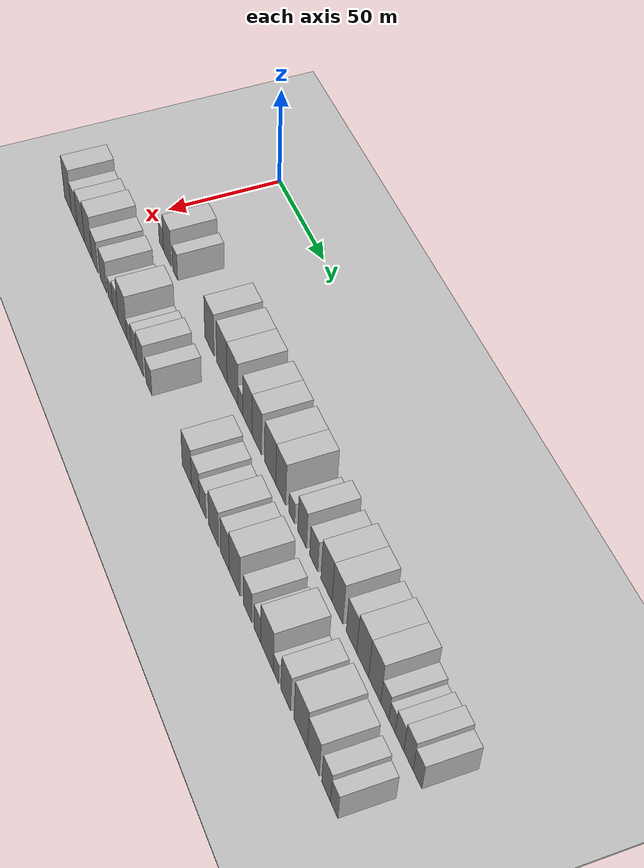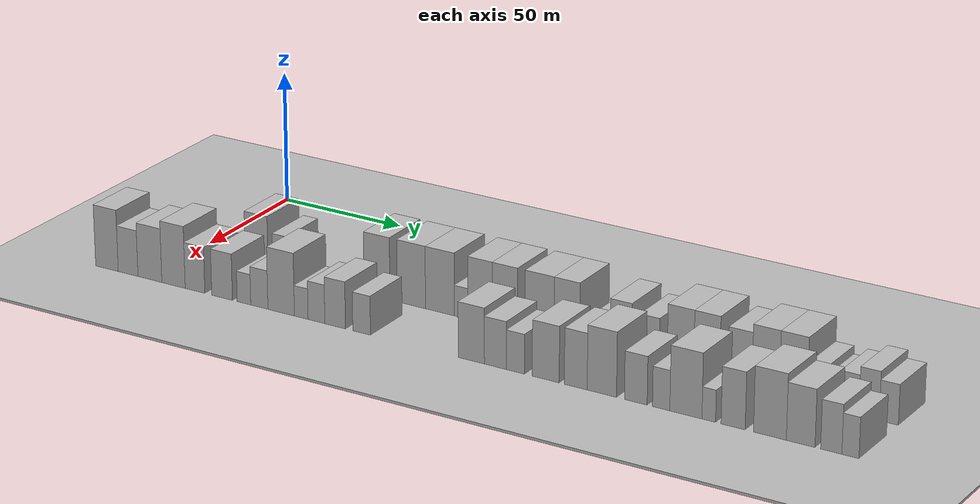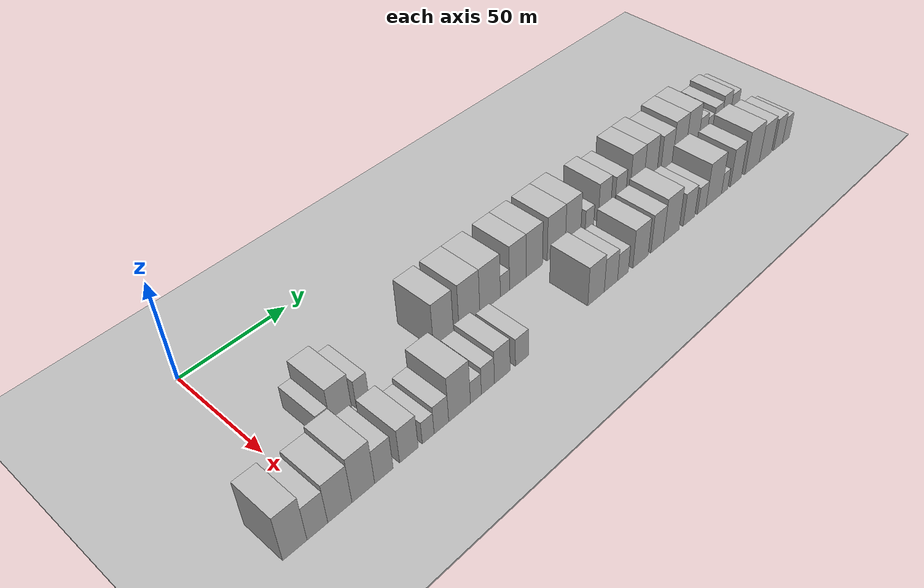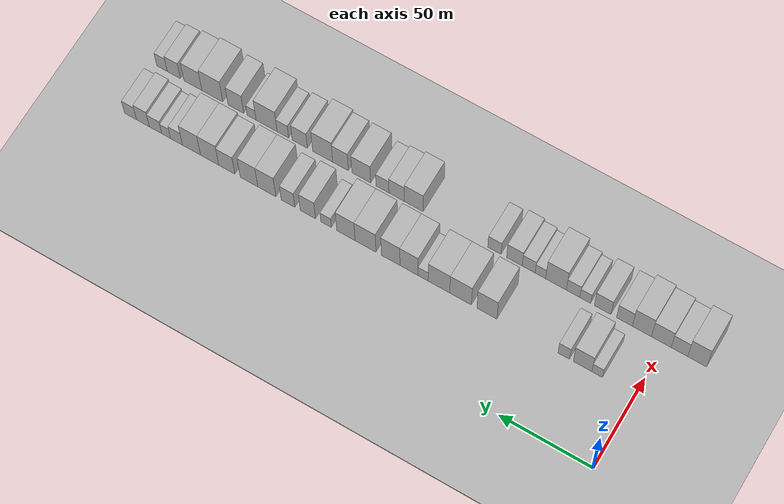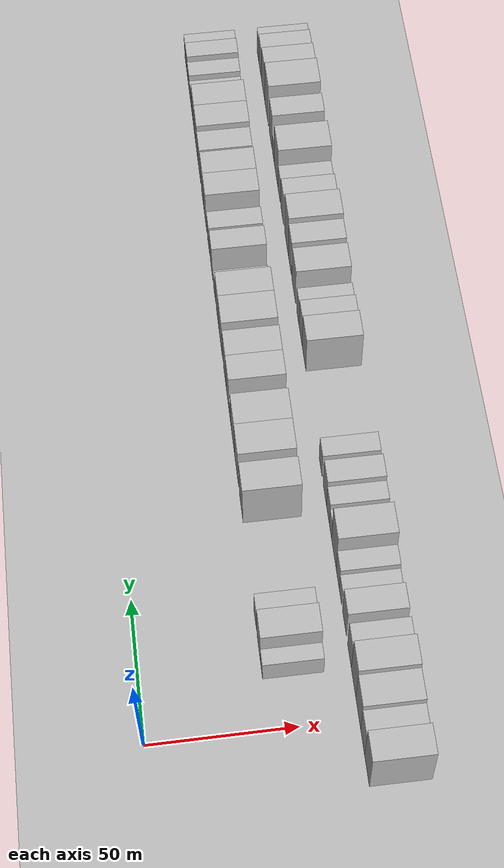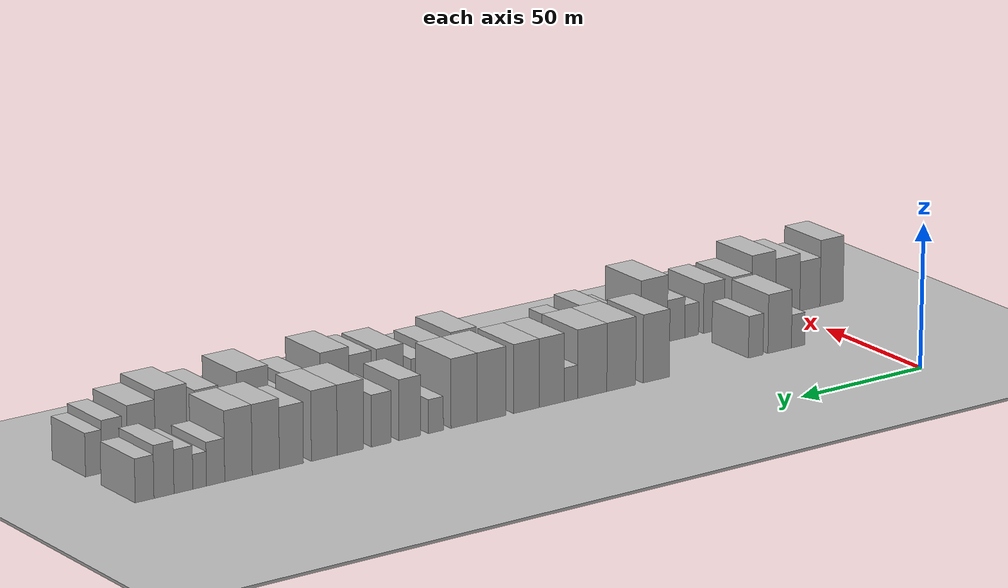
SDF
<sdf version="1.6">
 <world name="default">
  <include><name>ground_plane_1</name><uri>model://HANNAS_ground_plane</uri></include>
  <include>
   <name>ground_plane_2</name>
   <uri>model://HANNAS_ground_plane</uri>
   <pose>100 0 0  0 0 0</pose>
  </include>
  <model name="building_23">
   <static>1</static>
   <pose>50.0000 20.0365 0 0.000000 0.000000 0.000000</pose>
   <link name="link">
    <pose>0 0 6.00 0 0 0</pose>
    <collision name="collision"><geometry><box><size>20.0000 5.6139 12.0000</size></box></geometry></collision>
    <visual name="visual">
     <cast_shadows>0</cast_shadows>
     <geometry><box><size>20.0000 5.6139 12.0000</size></box></geometry>
     <material>
      <script>
       <uri>model://HANNAS_wall/materials/scripts</uri>
       <uri>model://HANNAS_wall/materials/textures</uri>
       <name>vrc/HANNAS_wall</name>
      </script>
     </material>
    </visual>
   </link>
  </model>
  <model name="building_24">
   <static>1</static>
   <pose>50.0000 27.7827 0 0.000000 0.000000 0.000000</pose>
   <link name="link">
    <pose>0 0 10.50 0 0 0</pose>
    <collision name="collision"><geometry><box><size>20.0000 9.8785 21.0000</size></box></geometry></collision>
    <visual name="visual">
     <cast_shadows>0</cast_shadows>
     <geometry><box><size>20.0000 9.8785 21.0000</size></box></geometry>
     <material>
      <script>
       <uri>model://HANNAS_wall/materials/scripts</uri>
       <uri>model://HANNAS_wall/materials/textures</uri>
       <name>vrc/HANNAS_wall</name>
      </script>
     </material>
    </visual>
   </link>
  </model>
  <model name="building_25">
   <static>1</static>
   <pose>50.0000 37.7864 0 0.000000 0.000000 0.000000</pose>
   <link name="link">
    <pose>0 0 7.50 0 0 0</pose>
    <collision name="collision"><geometry><box><size>20.0000 6.1289 15.0000</size></box></geometry></collision>
    <visual name="visual">
     <cast_shadows>0</cast_shadows>
     <geometry><box><size>20.0000 6.1289 15.0000</size></box></geometry>
     <material>
      <script>
       <uri>model://HANNAS_wall/materials/scripts</uri>
       <uri>model://HANNAS_wall/materials/textures</uri>
       <name>vrc/HANNAS_wall</name>
      </script>
     </material>
    </visual>
   </link>
  </model>
  <model name="building_26">
   <static>1</static>
   <pose>50.0000 79.0097 0 0.000000 0.000000 0.000000</pose>
   <link name="link">
    <pose>0 0 12.00 0 0 0</pose>
    <collision name="collision"><geometry><box><size>20.0000 10.7726 24.0000</size></box></geometry></collision>
    <visual name="visual">
     <cast_shadows>0</cast_shadows>
     <geometry><box><size>20.0000 10.7726 24.0000</size></box></geometry>
     <material>
      <script>
       <uri>model://HANNAS_wall/materials/scripts</uri>
       <uri>model://HANNAS_wall/materials/textures</uri>
       <name>vrc/HANNAS_wall</name>
      </script>
     </material>
    </visual>
   </link>
  </model>
  <model name="building_27">
   <static>1</static>
   <pose>50.0000 93.2455 0 0.000000 0.000000 0.000000</pose>
   <link name="link">
    <pose>0 0 12.00 0 0 0</pose>
    <collision name="collision"><geometry><box><size>20.0000 11.6992 24.0000</size></box></geometry></collision>
    <visual name="visual">
     <cast_shadows>0</cast_shadows>
     <geometry><box><size>20.0000 11.6992 24.0000</size></box></geometry>
     <material>
      <script>
       <uri>model://HANNAS_wall/materials/scripts</uri>
       <uri>model://HANNAS_wall/materials/textures</uri>
       <name>vrc/HANNAS_wall</name>
      </script>
     </material>
    </visual>
   </link>
  </model>
  <model name="building_28">
   <static>1</static>
   <pose>50.0000 105.0080 0 0.000000 0.000000 0.000000</pose>
   <link name="link">
    <pose>0 0 12.00 0 0 0</pose>
    <collision name="collision"><geometry><box><size>20.0000 11.8258 24.0000</size></box></geometry></collision>
    <visual name="visual">
     <cast_shadows>0</cast_shadows>
     <geometry><box><size>20.0000 11.8258 24.0000</size></box></geometry>
     <material>
      <script>
       <uri>model://HANNAS_wall/materials/scripts</uri>
       <uri>model://HANNAS_wall/materials/textures</uri>
       <name>vrc/HANNAS_wall</name>
      </script>
     </material>
    </visual>
   </link>
  </model>
  <model name="building_29">
   <static>1</static>
   <pose>50.0000 113.6295 0 0.000000 0.000000 0.000000</pose>
   <link name="link">
    <pose>0 0 6.00 0 0 0</pose>
    <collision name="collision"><geometry><box><size>20.0000 5.4173 12.0000</size></box></geometry></collision>
    <visual name="visual">
     <cast_shadows>0</cast_shadows>
     <geometry><box><size>20.0000 5.4173 12.0000</size></box></geometry>
     <material>
      <script>
       <uri>model://HANNAS_wall/materials/scripts</uri>
       <uri>model://HANNAS_wall/materials/textures</uri>
       <name>vrc/HANNAS_wall</name>
      </script>
     </material>
    </visual>
   </link>
  </model>
  <model name="building_30">
   <static>1</static>
   <pose>50.0000 121.3098 0 0.000000 0.000000 0.000000</pose>
   <link name="link">
    <pose>0 0 12.00 0 0 0</pose>
    <collision name="collision"><geometry><box><size>20.0000 9.9432 24.0000</size></box></geometry></collision>
    <visual name="visual">
     <cast_shadows>0</cast_shadows>
     <geometry><box><size>20.0000 9.9432 24.0000</size></box></geometry>
     <material>
      <script>
       <uri>model://HANNAS_wall/materials/scripts</uri>
       <uri>model://HANNAS_wall/materials/textures</uri>
       <name>vrc/HANNAS_wall</name>
      </script>
     </material>
    </visual>
   </link>
  </model>
  <model name="building_31">
   <static>1</static>
   <pose>50.0000 131.3700 0 0.000000 0.000000 0.000000</pose>
   <link name="link">
    <pose>0 0 12.00 0 0 0</pose>
    <collision name="collision"><geometry><box><size>20.0000 10.1771 24.0000</size></box></geometry></collision>
    <visual name="visual">
     <cast_shadows>0</cast_shadows>
     <geometry><box><size>20.0000 10.1771 24.0000</size></box></geometry>
     <material>
      <script>
       <uri>model://HANNAS_wall/materials/scripts</uri>
       <uri>model://HANNAS_wall/materials/textures</uri>
       <name>vrc/HANNAS_wall</name>
      </script>
     </material>
    </visual>
   </link>
  </model>
  <model name="building_32">
   <static>1</static>
   <pose>50.0000 145.2231 0 0.000000 0.000000 0.000000</pose>
   <link name="link">
    <pose>0 0 12.00 0 0 0</pose>
    <collision name="collision"><geometry><box><size>20.0000 11.5292 24.0000</size></box></geometry></collision>
    <visual name="visual">
     <cast_shadows>0</cast_shadows>
     <geometry><box><size>20.0000 11.5292 24.0000</size></box></geometry>
     <material>
      <script>
       <uri>model://HANNAS_wall/materials/scripts</uri>
       <uri>model://HANNAS_wall/materials/textures</uri>
       <name>vrc/HANNAS_wall</name>
      </script>
     </material>
    </visual>
   </link>
  </model>
  <model name="building_33">
   <static>1</static>
   <pose>50.0000 156.0514 0 0.000000 0.000000 0.000000</pose>
   <link name="link">
    <pose>0 0 12.00 0 0 0</pose>
    <collision name="collision"><geometry><box><size>20.0000 10.1275 24.0000</size></box></geometry></collision>
    <visual name="visual">
     <cast_shadows>0</cast_shadows>
     <geometry><box><size>20.0000 10.1275 24.0000</size></box></geometry>
     <material>
      <script>
       <uri>model://HANNAS_wall/materials/scripts</uri>
       <uri>model://HANNAS_wall/materials/textures</uri>
       <name>vrc/HANNAS_wall</name>
      </script>
     </material>
    </visual>
   </link>
  </model>
  <model name="building_34">
   <static>1</static>
   <pose>50.0000 167.0105 0 0.000000 0.000000 0.000000</pose>
   <link name="link">
    <pose>0 0 6.00 0 0 0</pose>
    <collision name="collision"><geometry><box><size>20.0000 5.7908 12.0000</size></box></geometry></collision>
    <visual name="visual">
     <cast_shadows>0</cast_shadows>
     <geometry><box><size>20.0000 5.7908 12.0000</size></box></geometry>
     <material>
      <script>
       <uri>model://HANNAS_wall/materials/scripts</uri>
       <uri>model://HANNAS_wall/materials/textures</uri>
       <name>vrc/HANNAS_wall</name>
      </script>
     </material>
    </visual>
   </link>
  </model>
  <model name="building_35">
   <static>1</static>
   <pose>50.0000 177.1326 0 0.000000 0.000000 0.000000</pose>
   <link name="link">
    <pose>0 0 10.50 0 0 0</pose>
    <collision name="collision"><geometry><box><size>20.0000 8.4533 21.0000</size></box></geometry></collision>
    <visual name="visual">
     <cast_shadows>0</cast_shadows>
     <geometry><box><size>20.0000 8.4533 21.0000</size></box></geometry>
     <material>
      <script>
       <uri>model://HANNAS_wall/materials/scripts</uri>
       <uri>model://HANNAS_wall/materials/textures</uri>
       <name>vrc/HANNAS_wall</name>
      </script>
     </material>
    </visual>
   </link>
  </model>
  <model name="building_36">
   <static>1</static>
   <pose>50.0000 188.1758 0 0.000000 0.000000 0.000000</pose>
   <link name="link">
    <pose>0 0 9.00 0 0 0</pose>
    <collision name="collision"><geometry><box><size>20.0000 7.6330 18.0000</size></box></geometry></collision>
    <visual name="visual">
     <cast_shadows>0</cast_shadows>
     <geometry><box><size>20.0000 7.6330 18.0000</size></box></geometry>
     <material>
      <script>
       <uri>model://HANNAS_wall/materials/scripts</uri>
       <uri>model://HANNAS_wall/materials/textures</uri>
       <name>vrc/HANNAS_wall</name>
      </script>
     </material>
    </visual>
   </link>
  </model>
  <model name="building_37">
   <static>1</static>
   <pose>50.0000 200.0619 0 0.000000 0.000000 0.000000</pose>
   <link name="link">
    <pose>0 0 12.00 0 0 0</pose>
    <collision name="collision"><geometry><box><size>20.0000 10.1394 24.0000</size></box></geometry></collision>
    <visual name="visual">
     <cast_shadows>0</cast_shadows>
     <geometry><box><size>20.0000 10.1394 24.0000</size></box></geometry>
     <material>
      <script>
       <uri>model://HANNAS_wall/materials/scripts</uri>
       <uri>model://HANNAS_wall/materials/textures</uri>
       <name>vrc/HANNAS_wall</name>
      </script>
     </material>
    </visual>
   </link>
  </model>
  <model name="building_38">
   <static>1</static>
   <pose>50.0000 210.0537 0 0.000000 0.000000 0.000000</pose>
   <link name="link">
    <pose>0 0 12.00 0 0 0</pose>
    <collision name="collision"><geometry><box><size>20.0000 9.8441 24.0000</size></box></geometry></collision>
    <visual name="visual">
     <cast_shadows>0</cast_shadows>
     <geometry><box><size>20.0000 9.8441 24.0000</size></box></geometry>
     <material>
      <script>
       <uri>model://HANNAS_wall/materials/scripts</uri>
       <uri>model://HANNAS_wall/materials/textures</uri>
       <name>vrc/HANNAS_wall</name>
      </script>
     </material>
    </visual>
   </link>
  </model>
  <model name="building_39">
   <static>1</static>
   <pose>50.0000 222.5201 0 0.000000 0.000000 0.000000</pose>
   <link name="link">
    <pose>0 0 10.50 0 0 0</pose>
    <collision name="collision"><geometry><box><size>20.0000 9.0887 21.0000</size></box></geometry></collision>
    <visual name="visual">
     <cast_shadows>0</cast_shadows>
     <geometry><box><size>20.0000 9.0887 21.0000</size></box></geometry>
     <material>
      <script>
       <uri>model://HANNAS_wall/materials/scripts</uri>
       <uri>model://HANNAS_wall/materials/textures</uri>
       <name>vrc/HANNAS_wall</name>
      </script>
     </material>
    </visual>
   </link>
  </model>
  <model name="building_40">
   <static>1</static>
   <pose>50.0000 232.1938 0 0.000000 0.000000 0.000000</pose>
   <link name="link">
    <pose>0 0 12.00 0 0 0</pose>
    <collision name="collision"><geometry><box><size>20.0000 10.2586 24.0000</size></box></geometry></collision>
    <visual name="visual">
     <cast_shadows>0</cast_shadows>
     <geometry><box><size>20.0000 10.2586 24.0000</size></box></geometry>
     <material>
      <script>
       <uri>model://HANNAS_wall/materials/scripts</uri>
       <uri>model://HANNAS_wall/materials/textures</uri>
       <name>vrc/HANNAS_wall</name>
      </script>
     </material>
    </visual>
   </link>
  </model>
  <model name="building_41">
   <static>1</static>
   <pose>50.0000 242.4522 0 0.000000 0.000000 0.000000</pose>
   <link name="link">
    <pose>0 0 12.00 0 0 0</pose>
    <collision name="collision"><geometry><box><size>20.0000 10.2583 24.0000</size></box></geometry></collision>
    <visual name="visual">
     <cast_shadows>0</cast_shadows>
     <geometry><box><size>20.0000 10.2583 24.0000</size></box></geometry>
     <material>
      <script>
       <uri>model://HANNAS_wall/materials/scripts</uri>
       <uri>model://HANNAS_wall/materials/textures</uri>
       <name>vrc/HANNAS_wall</name>
      </script>
     </material>
    </visual>
   </link>
  </model>
  <model name="building_42">
   <static>1</static>
   <pose>50.0000 250.9797 0 0.000000 0.000000 0.000000</pose>
   <link name="link">
    <pose>0 0 7.50 0 0 0</pose>
    <collision name="collision"><geometry><box><size>20.0000 6.7966 15.0000</size></box></geometry></collision>
    <visual name="visual">
     <cast_shadows>0</cast_shadows>
     <geometry><box><size>20.0000 6.7966 15.0000</size></box></geometry>
     <material>
      <script>
       <uri>model://HANNAS_wall/materials/scripts</uri>
       <uri>model://HANNAS_wall/materials/textures</uri>
       <name>vrc/HANNAS_wall</name>
      </script>
     </material>
    </visual>
   </link>
  </model>
  <model name="building_43">
   <static>1</static>
   <pose>50.0000 256.8951 0 0.000000 0.000000 0.000000</pose>
   <link name="link">
    <pose>0 0 6.00 0 0 0</pose>
    <collision name="collision"><geometry><box><size>20.0000 5.0343 12.0000</size></box></geometry></collision>
    <visual name="visual">
     <cast_shadows>0</cast_shadows>
     <geometry><box><size>20.0000 5.0343 12.0000</size></box></geometry>
     <material>
      <script>
       <uri>model://HANNAS_wall/materials/scripts</uri>
       <uri>model://HANNAS_wall/materials/textures</uri>
       <name>vrc/HANNAS_wall</name>
      </script>
     </material>
    </visual>
   </link>
  </model>
  <model name="building_44">
   <static>1</static>
   <pose>50.0000 262.9152 0 0.000000 0.000000 0.000000</pose>
   <link name="link">
    <pose>0 0 7.50 0 0 0</pose>
    <collision name="collision"><geometry><box><size>20.0000 7.0057 15.0000</size></box></geometry></collision>
    <visual name="visual">
     <cast_shadows>0</cast_shadows>
     <geometry><box><size>20.0000 7.0057 15.0000</size></box></geometry>
     <material>
      <script>
       <uri>model://HANNAS_wall/materials/scripts</uri>
       <uri>model://HANNAS_wall/materials/textures</uri>
       <name>vrc/HANNAS_wall</name>
      </script>
     </material>
    </visual>
   </link>
  </model>
  <model name="building_45">
   <static>1</static>
   <pose>50.0000 270.1034 0 0.000000 0.000000 0.000000</pose>
   <link name="link">
    <pose>0 0 9.00 0 0 0</pose>
    <collision name="collision"><geometry><box><size>20.0000 7.3708 18.0000</size></box></geometry></collision>
    <visual name="visual">
     <cast_shadows>0</cast_shadows>
     <geometry><box><size>20.0000 7.3708 18.0000</size></box></geometry>
     <material>
      <script>
       <uri>model://HANNAS_wall/materials/scripts</uri>
       <uri>model://HANNAS_wall/materials/textures</uri>
       <name>vrc/HANNAS_wall</name>
      </script>
     </material>
    </visual>
   </link>
  </model>
  <model name="building_46">
   <static>1</static>
   <pose>50.0000 277.2340 0 0.000000 0.000000 0.000000</pose>
   <link name="link">
    <pose>0 0 7.50 0 0 0</pose>
    <collision name="collision"><geometry><box><size>20.0000 6.8904 15.0000</size></box></geometry></collision>
    <visual name="visual">
     <cast_shadows>0</cast_shadows>
     <geometry><box><size>20.0000 6.8904 15.0000</size></box></geometry>
     <material>
      <script>
       <uri>model://HANNAS_wall/materials/scripts</uri>
       <uri>model://HANNAS_wall/materials/textures</uri>
       <name>vrc/HANNAS_wall</name>
      </script>
     </material>
    </visual>
   </link>
  </model>
  <model name="building_77">
   <static>1</static>
   <pose>79.0000 -17.0609 0 0.000000 0.000000 0.000000</pose>
   <link name="link">
    <pose>0 0 12.00 0 0 0</pose>
    <collision name="collision"><geometry><box><size>20.0000 10.0025 24.0000</size></box></geometry></collision>
    <visual name="visual">
     <cast_shadows>0</cast_shadows>
     <geometry><box><size>20.0000 10.0025 24.0000</size></box></geometry>
     <material>
      <script>
       <uri>model://HANNAS_wall/materials/scripts</uri>
       <uri>model://HANNAS_wall/materials/textures</uri>
       <name>vrc/HANNAS_wall</name>
      </script>
     </material>
    </visual>
   </link>
  </model>
  <model name="building_78">
   <static>1</static>
   <pose>79.0000 -7.7088 0 0.000000 0.000000 0.000000</pose>
   <link name="link">
    <pose>0 0 9.00 0 0 0</pose>
    <collision name="collision"><geometry><box><size>20.0000 8.7016 18.0000</size></box></geometry></collision>
    <visual name="visual">
     <cast_shadows>0</cast_shadows>
     <geometry><box><size>20.0000 8.7016 18.0000</size></box></geometry>
     <material>
      <script>
       <uri>model://HANNAS_wall/materials/scripts</uri>
       <uri>model://HANNAS_wall/materials/textures</uri>
       <name>vrc/HANNAS_wall</name>
      </script>
     </material>
    </visual>
   </link>
  </model>
  <model name="building_79">
   <static>1</static>
   <pose>79.0000 1.8762 0 0.000000 0.000000 0.000000</pose>
   <link name="link">
    <pose>0 0 10.50 0 0 0</pose>
    <collision name="collision"><geometry><box><size>20.0000 10.4684 21.0000</size></box></geometry></collision>
    <visual name="visual">
     <cast_shadows>0</cast_shadows>
     <geometry><box><size>20.0000 10.4684 21.0000</size></box></geometry>
     <material>
      <script>
       <uri>model://HANNAS_wall/materials/scripts</uri>
       <uri>model://HANNAS_wall/materials/textures</uri>
       <name>vrc/HANNAS_wall</name>
      </script>
     </material>
    </visual>
   </link>
  </model>
  <model name="building_80">
   <static>1</static>
   <pose>79.0000 12.1811 0 0.000000 0.000000 0.000000</pose>
   <link name="link">
    <pose>0 0 12.00 0 0 0</pose>
    <collision name="collision"><geometry><box><size>20.0000 10.1414 24.0000</size></box></geometry></collision>
    <visual name="visual">
     <cast_shadows>0</cast_shadows>
     <geometry><box><size>20.0000 10.1414 24.0000</size></box></geometry>
     <material>
      <script>
       <uri>model://HANNAS_wall/materials/scripts</uri>
       <uri>model://HANNAS_wall/materials/textures</uri>
       <name>vrc/HANNAS_wall</name>
      </script>
     </material>
    </visual>
   </link>
  </model>
  <model name="building_81">
   <static>1</static>
   <pose>79.0000 21.4870 0 0.000000 0.000000 0.000000</pose>
   <link name="link">
    <pose>0 0 9.00 0 0 0</pose>
    <collision name="collision"><geometry><box><size>20.0000 8.4704 18.0000</size></box></geometry></collision>
    <visual name="visual">
     <cast_shadows>0</cast_shadows>
     <geometry><box><size>20.0000 8.4704 18.0000</size></box></geometry>
     <material>
      <script>
       <uri>model://HANNAS_wall/materials/scripts</uri>
       <uri>model://HANNAS_wall/materials/textures</uri>
       <name>vrc/HANNAS_wall</name>
      </script>
     </material>
    </visual>
   </link>
  </model>
  <model name="building_82">
   <static>1</static>
   <pose>79.0000 33.1528 0 0.000000 0.000000 0.000000</pose>
   <link name="link">
    <pose>0 0 9.00 0 0 0</pose>
    <collision name="collision"><geometry><box><size>20.0000 8.8611 18.0000</size></box></geometry></collision>
    <visual name="visual">
     <cast_shadows>0</cast_shadows>
     <geometry><box><size>20.0000 8.8611 18.0000</size></box></geometry>
     <material>
      <script>
       <uri>model://HANNAS_wall/materials/scripts</uri>
       <uri>model://HANNAS_wall/materials/textures</uri>
       <name>vrc/HANNAS_wall</name>
      </script>
     </material>
    </visual>
   </link>
  </model>
  <model name="building_83">
   <static>1</static>
   <pose>79.0000 42.4728 0 0.000000 0.000000 0.000000</pose>
   <link name="link">
    <pose>0 0 6.00 0 0 0</pose>
    <collision name="collision"><geometry><box><size>20.0000 5.7789 12.0000</size></box></geometry></collision>
    <visual name="visual">
     <cast_shadows>0</cast_shadows>
     <geometry><box><size>20.0000 5.7789 12.0000</size></box></geometry>
     <material>
      <script>
       <uri>model://HANNAS_wall/materials/scripts</uri>
       <uri>model://HANNAS_wall/materials/textures</uri>
       <name>vrc/HANNAS_wall</name>
      </script>
     </material>
    </visual>
   </link>
  </model>
  <model name="building_84">
   <static>1</static>
   <pose>79.0000 48.9953 0 0.000000 0.000000 0.000000</pose>
   <link name="link">
    <pose>0 0 7.50 0 0 0</pose>
    <collision name="collision"><geometry><box><size>20.0000 7.2660 15.0000</size></box></geometry></collision>
    <visual name="visual">
     <cast_shadows>0</cast_shadows>
     <geometry><box><size>20.0000 7.2660 15.0000</size></box></geometry>
     <material>
      <script>
       <uri>model://HANNAS_wall/materials/scripts</uri>
       <uri>model://HANNAS_wall/materials/textures</uri>
       <name>vrc/HANNAS_wall</name>
      </script>
     </material>
    </visual>
   </link>
  </model>
  <model name="building_85">
   <static>1</static>
   <pose>79.0000 58.1985 0 0.000000 0.000000 0.000000</pose>
   <link name="link">
    <pose>0 0 12.00 0 0 0</pose>
    <collision name="collision"><geometry><box><size>20.0000 11.1405 24.0000</size></box></geometry></collision>
    <visual name="visual">
     <cast_shadows>0</cast_shadows>
     <geometry><box><size>20.0000 11.1405 24.0000</size></box></geometry>
     <material>
      <script>
       <uri>model://HANNAS_wall/materials/scripts</uri>
       <uri>model://HANNAS_wall/materials/textures</uri>
       <name>vrc/HANNAS_wall</name>
      </script>
     </material>
    </visual>
   </link>
  </model>
  <model name="building_86">
   <static>1</static>
   <pose>79.0000 66.6175 0 0.000000 0.000000 0.000000</pose>
   <link name="link">
    <pose>0 0 6.00 0 0 0</pose>
    <collision name="collision"><geometry><box><size>20.0000 5.6974 12.0000</size></box></geometry></collision>
    <visual name="visual">
     <cast_shadows>0</cast_shadows>
     <geometry><box><size>20.0000 5.6974 12.0000</size></box></geometry>
     <material>
      <script>
       <uri>model://HANNAS_wall/materials/scripts</uri>
       <uri>model://HANNAS_wall/materials/textures</uri>
       <name>vrc/HANNAS_wall</name>
      </script>
     </material>
    </visual>
   </link>
  </model>
  <model name="building_87">
   <static>1</static>
   <pose>79.0000 72.9470 0 0.000000 0.000000 0.000000</pose>
   <link name="link">
    <pose>0 0 7.50 0 0 0</pose>
    <collision name="collision"><geometry><box><size>20.0000 6.9616 15.0000</size></box></geometry></collision>
    <visual name="visual">
     <cast_shadows>0</cast_shadows>
     <geometry><box><size>20.0000 6.9616 15.0000</size></box></geometry>
     <material>
      <script>
       <uri>model://HANNAS_wall/materials/scripts</uri>
       <uri>model://HANNAS_wall/materials/textures</uri>
       <name>vrc/HANNAS_wall</name>
      </script>
     </material>
    </visual>
   </link>
  </model>
  <model name="building_88">
   <static>1</static>
   <pose>79.0000 80.6842 0 0.000000 0.000000 0.000000</pose>
   <link name="link">
    <pose>0 0 9.00 0 0 0</pose>
    <collision name="collision"><geometry><box><size>20.0000 8.5128 18.0000</size></box></geometry></collision>
    <visual name="visual">
     <cast_shadows>0</cast_shadows>
     <geometry><box><size>20.0000 8.5128 18.0000</size></box></geometry>
     <material>
      <script>
       <uri>model://HANNAS_wall/materials/scripts</uri>
       <uri>model://HANNAS_wall/materials/textures</uri>
       <name>vrc/HANNAS_wall</name>
      </script>
     </material>
    </visual>
   </link>
  </model>
  <model name="building_89">
   <static>1</static>
   <pose>79.0000 91.5619 0 0.000000 0.000000 0.000000</pose>
   <link name="link">
    <pose>0 0 7.50 0 0 0</pose>
    <collision name="collision"><geometry><box><size>20.0000 7.2427 15.0000</size></box></geometry></collision>
    <visual name="visual">
     <cast_shadows>0</cast_shadows>
     <geometry><box><size>20.0000 7.2427 15.0000</size></box></geometry>
     <material>
      <script>
       <uri>model://HANNAS_wall/materials/scripts</uri>
       <uri>model://HANNAS_wall/materials/textures</uri>
       <name>vrc/HANNAS_wall</name>
      </script>
     </material>
    </visual>
   </link>
  </model>
  <model name="building_90">
   <static>1</static>
   <pose>79.0000 135.7607 0 0.000000 0.000000 0.000000</pose>
   <link name="link">
    <pose>0 0 10.50 0 0 0</pose>
    <collision name="collision"><geometry><box><size>20.0000 10.3850 21.0000</size></box></geometry></collision>
    <visual name="visual">
     <cast_shadows>0</cast_shadows>
     <geometry><box><size>20.0000 10.3850 21.0000</size></box></geometry>
     <material>
      <script>
       <uri>model://HANNAS_wall/materials/scripts</uri>
       <uri>model://HANNAS_wall/materials/textures</uri>
       <name>vrc/HANNAS_wall</name>
      </script>
     </material>
    </visual>
   </link>
  </model>
  <model name="building_91">
   <static>1</static>
   <pose>79.0000 145.2522 0 0.000000 0.000000 0.000000</pose>
   <link name="link">
    <pose>0 0 9.00 0 0 0</pose>
    <collision name="collision"><geometry><box><size>20.0000 8.5981 18.0000</size></box></geometry></collision>
    <visual name="visual">
     <cast_shadows>0</cast_shadows>
     <geometry><box><size>20.0000 8.5981 18.0000</size></box></geometry>
     <material>
      <script>
       <uri>model://HANNAS_wall/materials/scripts</uri>
       <uri>model://HANNAS_wall/materials/textures</uri>
       <name>vrc/HANNAS_wall</name>
      </script>
     </material>
    </visual>
   </link>
  </model>
  <model name="building_92">
   <static>1</static>
   <pose>79.0000 153.1192 0 0.000000 0.000000 0.000000</pose>
   <link name="link">
    <pose>0 0 7.50 0 0 0</pose>
    <collision name="collision"><geometry><box><size>20.0000 7.1359 15.0000</size></box></geometry></collision>
    <visual name="visual">
     <cast_shadows>0</cast_shadows>
     <geometry><box><size>20.0000 7.1359 15.0000</size></box></geometry>
     <material>
      <script>
       <uri>model://HANNAS_wall/materials/scripts</uri>
       <uri>model://HANNAS_wall/materials/textures</uri>
       <name>vrc/HANNAS_wall</name>
      </script>
     </material>
    </visual>
   </link>
  </model>
  <model name="building_93">
   <static>1</static>
   <pose>79.0000 164.9041 0 0.000000 0.000000 0.000000</pose>
   <link name="link">
    <pose>0 0 10.50 0 0 0</pose>
    <collision name="collision"><geometry><box><size>20.0000 10.4339 21.0000</size></box></geometry></collision>
    <visual name="visual">
     <cast_shadows>0</cast_shadows>
     <geometry><box><size>20.0000 10.4339 21.0000</size></box></geometry>
     <material>
      <script>
       <uri>model://HANNAS_wall/materials/scripts</uri>
       <uri>model://HANNAS_wall/materials/textures</uri>
       <name>vrc/HANNAS_wall</name>
      </script>
     </material>
    </visual>
   </link>
  </model>
  <model name="building_94">
   <static>1</static>
   <pose>79.0000 176.5016 0 0.000000 0.000000 0.000000</pose>
   <link name="link">
    <pose>0 0 10.50 0 0 0</pose>
    <collision name="collision"><geometry><box><size>20.0000 8.7610 21.0000</size></box></geometry></collision>
    <visual name="visual">
     <cast_shadows>0</cast_shadows>
     <geometry><box><size>20.0000 8.7610 21.0000</size></box></geometry>
     <material>
      <script>
       <uri>model://HANNAS_wall/materials/scripts</uri>
       <uri>model://HANNAS_wall/materials/textures</uri>
       <name>vrc/HANNAS_wall</name>
      </script>
     </material>
    </visual>
   </link>
  </model>
  <model name="building_95">
   <static>1</static>
   <pose>79.0000 186.4643 0 0.000000 0.000000 0.000000</pose>
   <link name="link">
    <pose>0 0 12.00 0 0 0</pose>
    <collision name="collision"><geometry><box><size>20.0000 11.1644 24.0000</size></box></geometry></collision>
    <visual name="visual">
     <cast_shadows>0</cast_shadows>
     <geometry><box><size>20.0000 11.1644 24.0000</size></box></geometry>
     <material>
      <script>
       <uri>model://HANNAS_wall/materials/scripts</uri>
       <uri>model://HANNAS_wall/materials/textures</uri>
       <name>vrc/HANNAS_wall</name>
      </script>
     </material>
    </visual>
   </link>
  </model>
  <model name="building_96">
   <static>1</static>
   <pose>79.0000 199.3229 0 0.000000 0.000000 0.000000</pose>
   <link name="link">
    <pose>0 0 9.00 0 0 0</pose>
    <collision name="collision"><geometry><box><size>20.0000 8.5527 18.0000</size></box></geometry></collision>
    <visual name="visual">
     <cast_shadows>0</cast_shadows>
     <geometry><box><size>20.0000 8.5527 18.0000</size></box></geometry>
     <material>
      <script>
       <uri>model://HANNAS_wall/materials/scripts</uri>
       <uri>model://HANNAS_wall/materials/textures</uri>
       <name>vrc/HANNAS_wall</name>
      </script>
     </material>
    </visual>
   </link>
  </model>
  <model name="building_97">
   <static>1</static>
   <pose>79.0000 208.8476 0 0.000000 0.000000 0.000000</pose>
   <link name="link">
    <pose>0 0 7.50 0 0 0</pose>
    <collision name="collision"><geometry><box><size>20.0000 6.4966 15.0000</size></box></geometry></collision>
    <visual name="visual">
     <cast_shadows>0</cast_shadows>
     <geometry><box><size>20.0000 6.4966 15.0000</size></box></geometry>
     <material>
      <script>
       <uri>model://HANNAS_wall/materials/scripts</uri>
       <uri>model://HANNAS_wall/materials/textures</uri>
       <name>vrc/HANNAS_wall</name>
      </script>
     </material>
    </visual>
   </link>
  </model>
  <model name="building_98">
   <static>1</static>
   <pose>79.0000 218.0600 0 0.000000 0.000000 0.000000</pose>
   <link name="link">
    <pose>0 0 12.00 0 0 0</pose>
    <collision name="collision"><geometry><box><size>20.0000 11.9283 24.0000</size></box></geometry></collision>
    <visual name="visual">
     <cast_shadows>0</cast_shadows>
     <geometry><box><size>20.0000 11.9283 24.0000</size></box></geometry>
     <material>
      <script>
       <uri>model://HANNAS_wall/materials/scripts</uri>
       <uri>model://HANNAS_wall/materials/textures</uri>
       <name>vrc/HANNAS_wall</name>
      </script>
     </material>
    </visual>
   </link>
  </model>
  <model name="building_99">
   <static>1</static>
   <pose>79.0000 226.5400 0 0.000000 0.000000 0.000000</pose>
   <link name="link">
    <pose>0 0 6.00 0 0 0</pose>
    <collision name="collision"><geometry><box><size>20.0000 5.0315 12.0000</size></box></geometry></collision>
    <visual name="visual">
     <cast_shadows>0</cast_shadows>
     <geometry><box><size>20.0000 5.0315 12.0000</size></box></geometry>
     <material>
      <script>
       <uri>model://HANNAS_wall/materials/scripts</uri>
       <uri>model://HANNAS_wall/materials/textures</uri>
       <name>vrc/HANNAS_wall</name>
      </script>
     </material>
    </visual>
   </link>
  </model>
  <model name="building_100">
   <static>1</static>
   <pose>79.0000 235.4849 0 0.000000 0.000000 0.000000</pose>
   <link name="link">
    <pose>0 0 10.50 0 0 0</pose>
    <collision name="collision"><geometry><box><size>20.0000 8.8583 21.0000</size></box></geometry></collision>
    <visual name="visual">
     <cast_shadows>0</cast_shadows>
     <geometry><box><size>20.0000 8.8583 21.0000</size></box></geometry>
     <material>
      <script>
       <uri>model://HANNAS_wall/materials/scripts</uri>
       <uri>model://HANNAS_wall/materials/textures</uri>
       <name>vrc/HANNAS_wall</name>
      </script>
     </material>
    </visual>
   </link>
  </model>
  <model name="building_101">
   <static>1</static>
   <pose>79.0000 248.8775 0 0.000000 0.000000 0.000000</pose>
   <link name="link">
    <pose>0 0 12.00 0 0 0</pose>
    <collision name="collision"><geometry><box><size>20.0000 11.9271 24.0000</size></box></geometry></collision>
    <visual name="visual">
     <cast_shadows>0</cast_shadows>
     <geometry><box><size>20.0000 11.9271 24.0000</size></box></geometry>
     <material>
      <script>
       <uri>model://HANNAS_wall/materials/scripts</uri>
       <uri>model://HANNAS_wall/materials/textures</uri>
       <name>vrc/HANNAS_wall</name>
      </script>
     </material>
    </visual>
   </link>
  </model>
  <model name="building_102">
   <static>1</static>
   <pose>79.0000 259.9912 0 0.000000 0.000000 0.000000</pose>
   <link name="link">
    <pose>0 0 10.50 0 0 0</pose>
    <collision name="collision"><geometry><box><size>20.0000 10.3002 21.0000</size></box></geometry></collision>
    <visual name="visual">
     <cast_shadows>0</cast_shadows>
     <geometry><box><size>20.0000 10.3002 21.0000</size></box></geometry>
     <material>
      <script>
       <uri>model://HANNAS_wall/materials/scripts</uri>
       <uri>model://HANNAS_wall/materials/textures</uri>
       <name>vrc/HANNAS_wall</name>
      </script>
     </material>
    </visual>
   </link>
  </model>
  <model name="building_103">
   <static>1</static>
   <pose>79.0000 270.9260 0 0.000000 0.000000 0.000000</pose>
   <link name="link">
    <pose>0 0 9.00 0 0 0</pose>
    <collision name="collision"><geometry><box><size>20.0000 7.5695 18.0000</size></box></geometry></collision>
    <visual name="visual">
     <cast_shadows>0</cast_shadows>
     <geometry><box><size>20.0000 7.5695 18.0000</size></box></geometry>
     <material>
      <script>
       <uri>model://HANNAS_wall/materials/scripts</uri>
       <uri>model://HANNAS_wall/materials/textures</uri>
       <name>vrc/HANNAS_wall</name>
      </script>
     </material>
    </visual>
   </link>
  </model>
  <model name="building_104">
   <static>1</static>
   <pose>79.0000 277.7428 0 0.000000 0.000000 0.000000</pose>
   <link name="link">
    <pose>0 0 7.50 0 0 0</pose>
    <collision name="collision"><geometry><box><size>20.0000 6.0641 15.0000</size></box></geometry></collision>
    <visual name="visual">
     <cast_shadows>0</cast_shadows>
     <geometry><box><size>20.0000 6.0641 15.0000</size></box></geometry>
     <material>
      <script>
       <uri>model://HANNAS_wall/materials/scripts</uri>
       <uri>model://HANNAS_wall/materials/textures</uri>
       <name>vrc/HANNAS_wall</name>
      </script>
     </material>
    </visual>
   </link>
  </model>
 </world>
</sdf>
